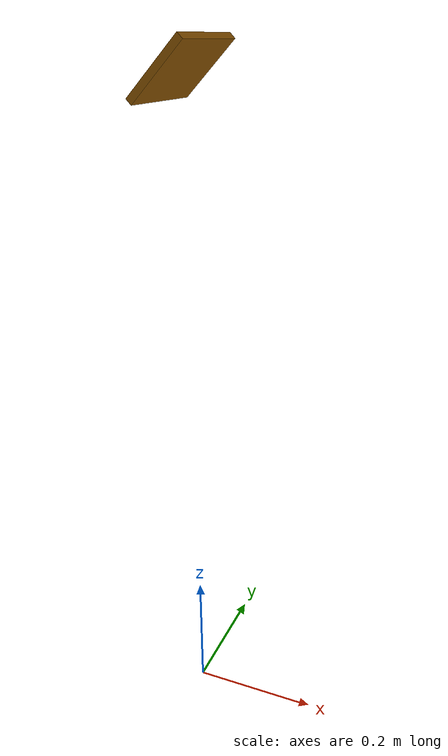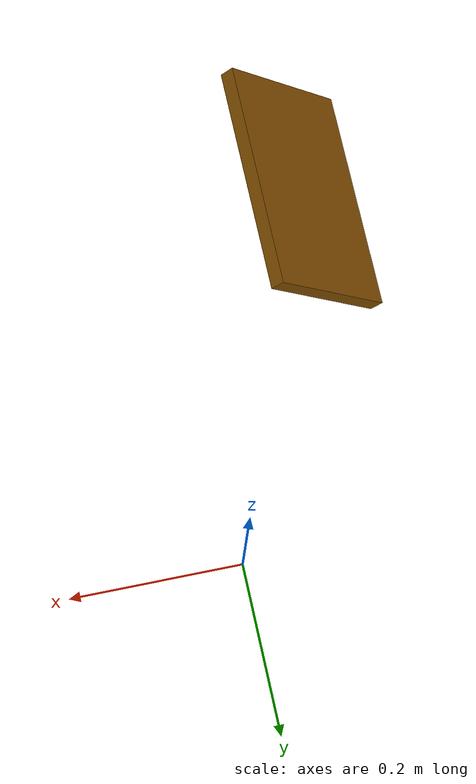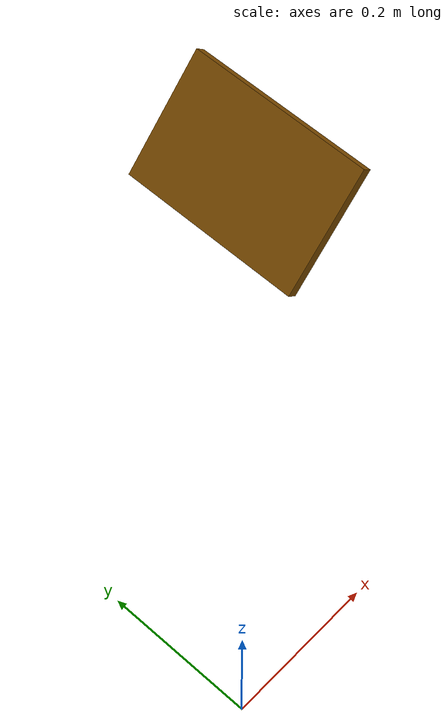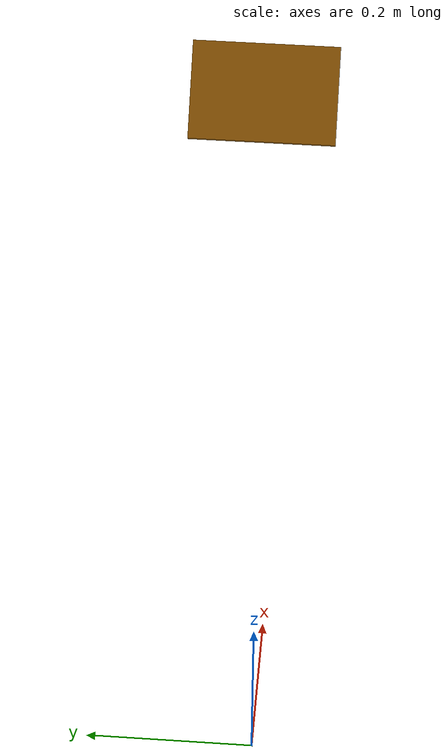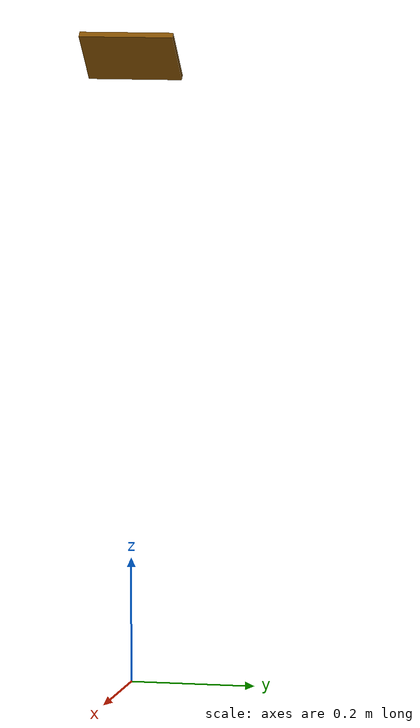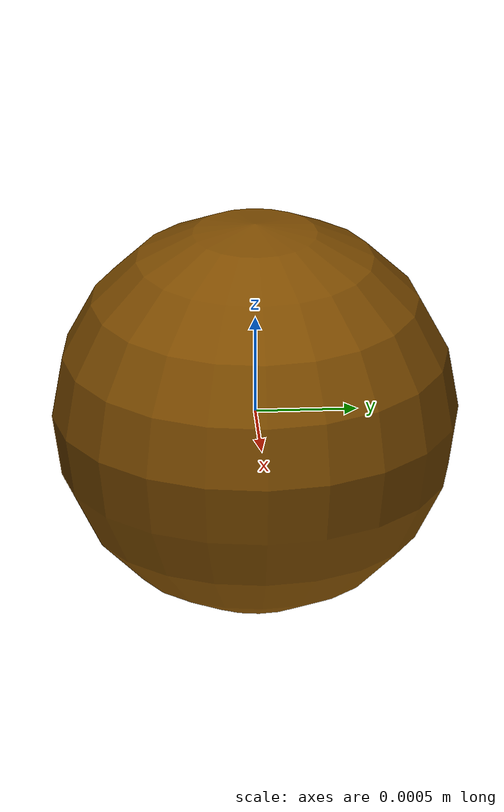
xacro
<robot name="mycamera" xmlns:xacro="http://wiki.ros.org/xacro">

    <link name="base_link">
        <visual>
            <geometry>
                <sphere radius="0.001" />
            </geometry>
            <origin xyz="0.0 0.0 0.0" rpy="0.0 0.0 0.0" />
            <material name="yellow">
                <color rgba="0.5 0.3 0.0 1" />
            </material>
        </visual>
        <collision>
            <geometry>
                <sphere radius="0.001" />
            </geometry>
            <origin xyz="0.0 0.0 0.0" rpy="0.0 0.0 0.0" />
        </collision>
        <inertial>
            <origin xyz="0 0 0" />
            <mass value="6" />
            <inertia ixx="1" ixy="0" ixz="0" iyy="1" iyz="0" izz="1" />
        </inertial>
    </link>

    <link name="camera_box">
        <visual>
            <geometry>
                <box size="0.01 0.15 0.1" />
            </geometry>
            <origin xyz="0.0 0.0 0.0" rpy="0.0 0.0 0.0" />
            <material name = "yellow">
                <color rgba="0.5 0.3 0.0 1" />
            </material>
        </visual>
        <collision>
            <geometry>
                <box size="0.01 0.15 0.1" />
            </geometry>
            <origin xyz="0.0 0.0 0.0" rpy="0.0 0.0 0.0" />
        </collision>
        <inertial>
            <origin xyz="0 0 0" />
            <mass value="0" />
            <inertia ixx="1" ixy="0" ixz="0" iyy="1" iyz="0" izz="1" />
        </inertial>
    </link>

    <joint name="camera_box2base_link" type="fixed">
        <parent link="base_link"/>
        <child link="camera_box" />
        <origin xyz="0 0 1" rpy="0 0.7854 0" />
        <axis xyz="0 0 0" />
    </joint>

    <gazebo reference="base_link">
        <material>Gazebo/Red </material>
    </gazebo>

</robot>
